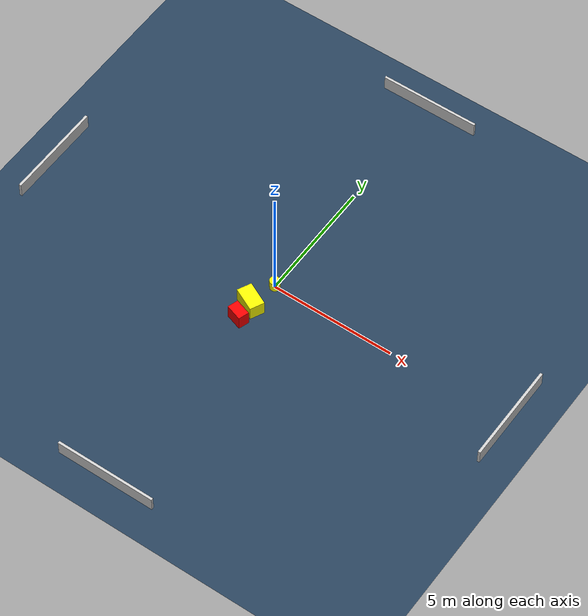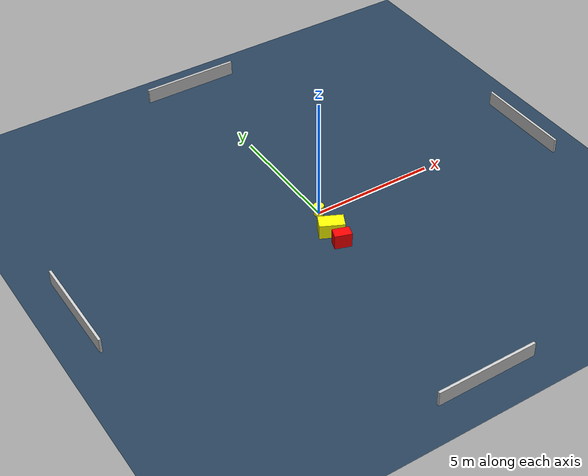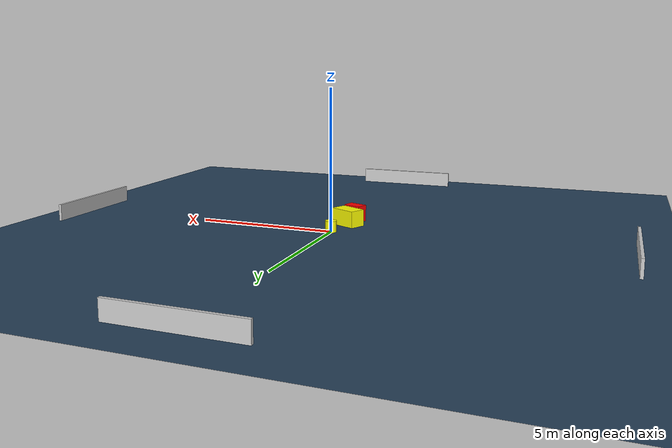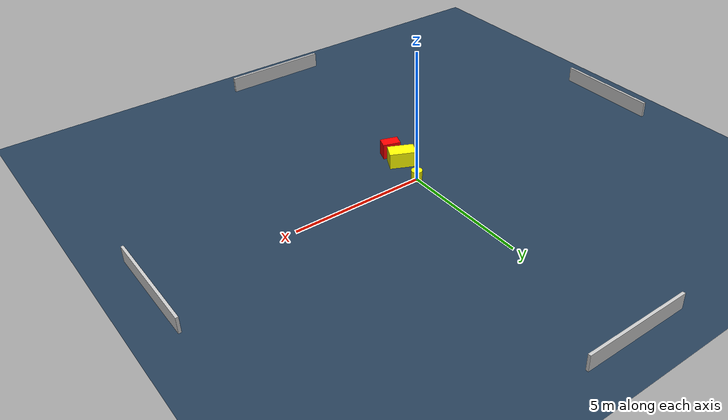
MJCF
<?xml version="1.0" ?>
<mujoco model="generated_environment">
  <option timestep="0.01" integrator="RK4" cone="elliptic"/>
  <default>
    <geom density="1"/>
  </default>
  <asset>
    <texture builtin="gradient" height="3072" name="skybox" rgb1="0.3 0.5 0.7" rgb2="0 0 0" type="skybox" width="512"/>
    <texture builtin="checker" height="300" name="groundplane" rgb1="0.2 0.3 0.4" rgb2="0.1 0.2 0.3" type="2d" width="300"/>
    <material name="groundplane" reflectance="0.2" texrepeat="5 5" texture="groundplane"/>
  </asset>
  <worldbody>
    <light dir="0 0 -1" directional="true" pos="0 0 1.5"/>
    <geom condim="3" friction="0.5 0.005 0.001" material="groundplane" name="floor" pos="0 0 0" size="0 0 0.05" type="plane"/>
    <body name="walls">
      <geom name="wall_1" condim="4" pos="-10.0 0.0 0.3" rgba="0.800000011920929 0.800000011920929 0.800000011920929 1.0" size="0.05 2.0 0.3" type="box"/>
      <geom name="wall_2" condim="4" pos="10.0 0.0 0.3" rgba="0.800000011920929 0.800000011920929 0.800000011920929 1.0" size="0.05 2.0 0.3" type="box"/>
      <geom name="wall_3" condim="4" pos="0.0 -10.0 0.3" rgba="0.800000011920929 0.800000011920929 0.800000011920929 1.0" size="2.0 0.05 0.3" type="box"/>
      <geom name="wall_4" condim="4" pos="0.0 10.0 0.3" rgba="0.800000011920929 0.800000011920929 0.800000011920929 1.0" size="2.0 0.05 0.3" type="box"/>
    </body>
    <body name="robot">
      <joint name="joint_x" type="slide" pos="0 0 0" axis="1 0 0"/>
      <joint name="joint_y" type="slide" pos="0 0 0" axis="0 1 0"/>
      <geom name="robot" type="cylinder" pos="0.0 0.0 0.2" size="0.2 0.2 0.0" mass="5.0" friction="1.0 0.005 0.0001" condim="4" rgba="1.0 1.0 0.0 1.0"/>
    </body>
    <body name="obstacle_1_movable">
      <geom name="obstacle_1_movable" condim="4" pos="-0.2149418100084407 -1.17969906863098 0.3" euler="0 0 154.0664279399056" friction="0.0 0.005 0.001" rgba="1.0 1.0 0.0 1.0" size="0.49066917787748154 0.29496639363526256 0.3" type="box" mass="0.1"/>
      <joint type="free"/>
    </body>
    <body name="obstacle_2_static">
      <geom name="obstacle_2_static" condim="4" pos="-0.23412900066137549 -1.9114277959973152 0.3" euler="0 0 71.69705246321888" friction="0.0 0.005 0.001" rgba="1.0 0.0 0.0 1.0" size="0.21670578976336904 0.33368039236343516 0.3" type="box"/>
    </body>
  </worldbody>
  <actuator>
    <motor name="actuator_x" joint="joint_x" gear="1" ctrlrange="-1 1"/>
    <motor name="actuator_y" joint="joint_y" gear="1" ctrlrange="-1 1"/>
  </actuator>
</mujoco>
